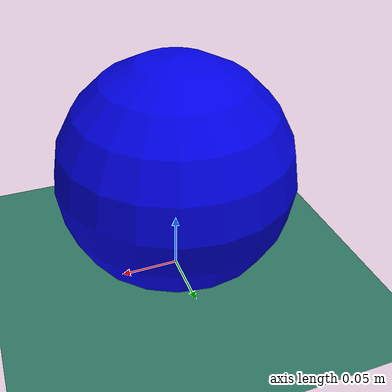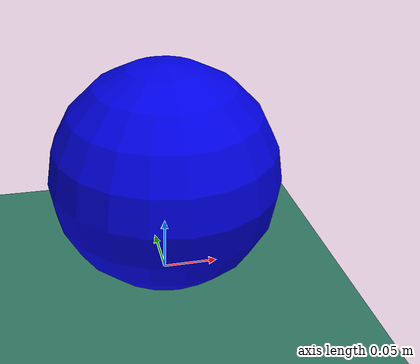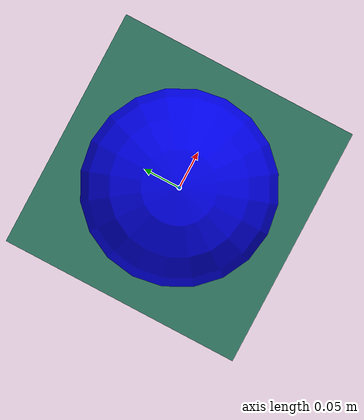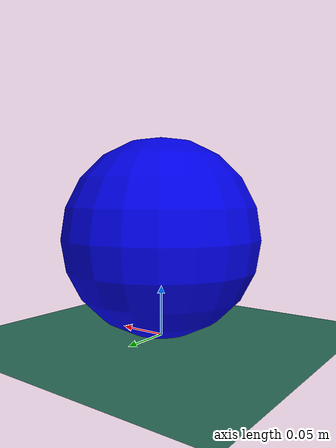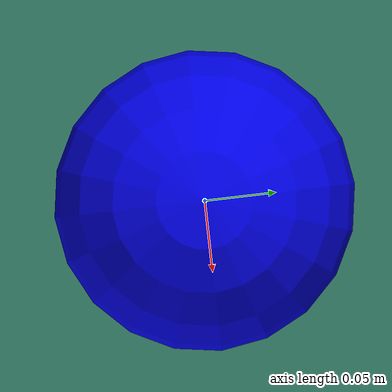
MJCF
<!-- TODO -->
<!-- (1) correct mass/inertial matricies (just weight for now) -->
<mujoco model="ball">
  <compiler angle="radian"/>
  <size nconmax="100" njmax="500"/>
  <option integrator="RK4" timestep="0.01"/>
  <include file="../friction_floors/friction_floor_uniform.xml"/>
  <asset>
    <texture builtin="checker" height="100" mark="cross" markrgb=".8 .8 .8" name="texplane" rgb1="0.26 0.12 0.36" rgb2="0.23 0.09 0.33" type="2d" width="100"/>
    <material name="matplane" reflectance="0.3" texrepeat="30 30" texture="texplane" texuniform="true"/>
  </asset>
  <visual>
    <headlight ambient="0.6 0.6 0.6" diffuse="0.5 0.5 0.5" specular="0.2 0.2 0.2"/>
    <map znear="0.001"/>
  </visual>
  <worldbody>
    <body name="Ball" pos="0.0 0.0 0.1">
      <geom mass="2" name="center" size="0.1" type="sphere" friction="0.0 0.0 0.000" rgba="0.0 0.0 0.9 1" condim="6"/>
      <joint name="free" type="free"/>
      <site name="rateX" pos="0 0 0" quat="1. 0. 0. 0." rgba="0.3 0.8 0.3 1" size="0.012 0.012 0.025" type="box"/>
      <site name="rateY" pos="0 0 0" quat="1. 0. 0. 0." rgba="0.3 0.8 0.3 1" size="0.012 0.012 0.025" type="box"/>
      <site name="rateZ" pos="0 0 0" quat="1. 0. 0. 0." rgba="0.3 0.8 0.3 1" size="0.012 0.012 0.025" type="box"/>
    </body>
  </worldbody>
  <actuator>
    <motor ctrllimited="false" ctrlrange="-1 1" gear="0. 0. 0. 1. 0. 0." site="rateX"/>
    <motor ctrllimited="false" ctrlrange="-1 1" gear="0. 0. 0. 0. 1. 0." site="rateY"/>
    <motor ctrllimited="false" ctrlrange="-1 1" gear="0. 0. 0. 0. 0. 1." site="rateZ"/>
  </actuator>
</mujoco>

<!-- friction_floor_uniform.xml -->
<mujoco model="mushr_nano">
  <compiler angle="radian" />
  <asset>
    <texture name='a' builtin="gradient" height="100" rgb1="1 1 1" rgb2="0 0 0" type="skybox" width="100"/>
    <texture name="texplane0" type="2d" builtin="checker" rgb1="0.14 0.83 0.43" rgb2="0.23 0.09 0.33" width="100" height="100" mark="cross" markrgb=".8 .8 .8"/>
    <material name="matplane0" reflectance="0.3" texture="texplane0" texrepeat="30 30" texuniform="true"/>
  </asset>
  <visual>
    <headlight ambient="0.6 0.6 0.6" diffuse="0.5 0.5 0.5" specular="0.2 0.2 0.2"/>
    <map znear="0.001" />
  </visual>
  <worldbody>
    <geom contype="1" friction="1 0 0.001" name="floor0" pos="0 0 0" euler="0 0 0" size="0 0 0.01" type="plane" material="matplane0" condim="6"/>

  </worldbody>
</mujoco>
